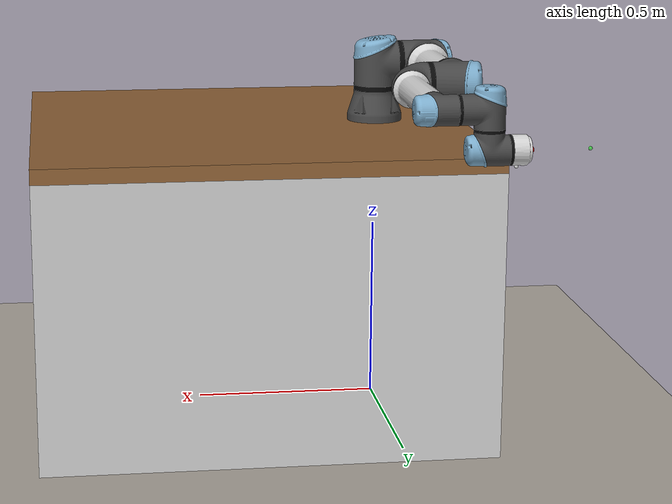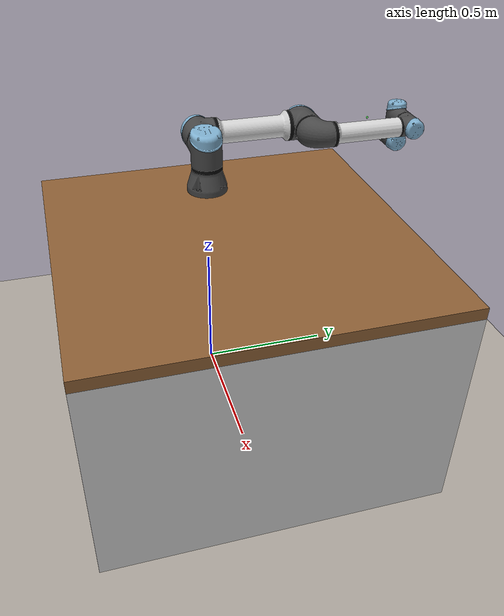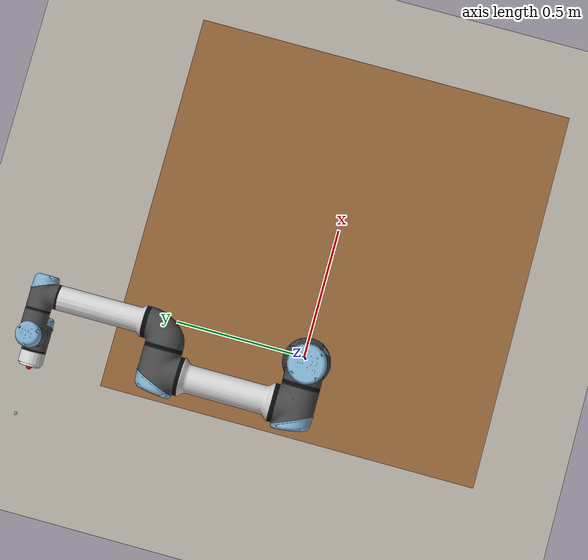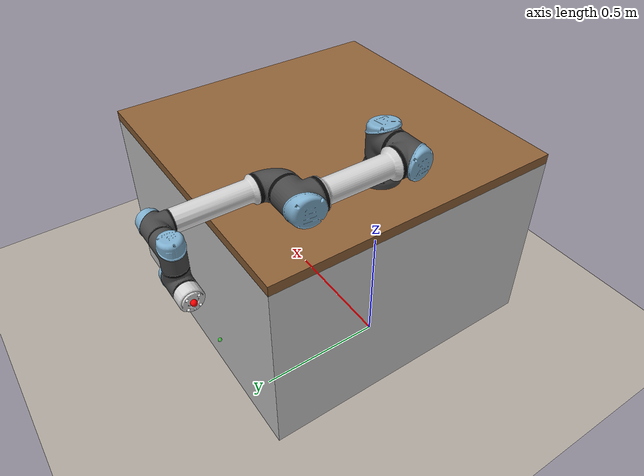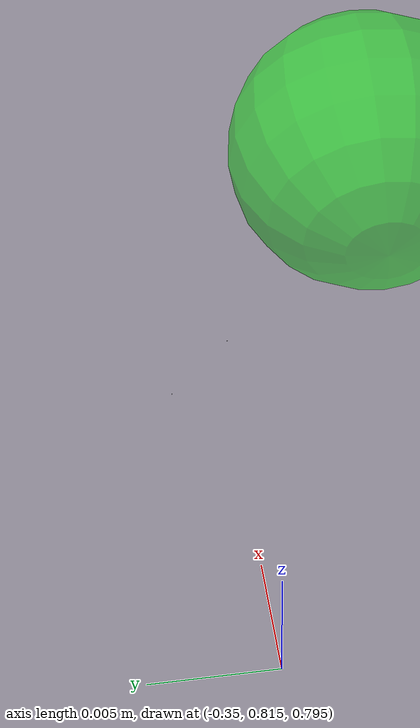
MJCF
<mujoco model="Scanned Objects">
    <!-- Memory? -->
    <size memory="500M"/>

    <!-- Default options -->
    <compiler angle="radian" autolimits="true" />
    <option integrator="RK4" noslip_iterations="20" />
    <default>
        <joint armature="0.1" damping="0.1" />
        <default class="visual_only">
            <geom type="mesh" contype="0" conaffinity="0" group="2" />
        </default>
        <default class="no_visual_collision">
            <!-- visual group of 'collision' should be 3 to not render -->
            <geom type="capsule" solimp=".9 .95 .01" solref=".02 1" group="3" />
        </default>
        <default class="visual_collision">
            <geom type="mesh" solimp=".9 .95 .01" solref=".02 1" group="2" />
        </default>
    </default>

    <!-- Sky and floor -->
    <include file="./tabletop/object/floor_new.xml" />

    <!-- Table -->
    <include file="./tabletop/object/object_table_3.xml" />

    <include file="./ur5e_rq2f85/ur5e_2f85.xml"/>

</mujoco>

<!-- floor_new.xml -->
<mujoco model="floor and sky">

    <visual>
        <headlight diffuse="0.6 0.6 0.6" ambient="0.3 0.3 0.3" specular="0 0 0" />
        <rgba haze="0.15 0.25 0.35 1" />
    </visual>

    <asset>
        <!-- Sky -->
        <texture type="skybox" builtin="gradient" rgb1="0.3 0.5 0.7" rgb2="0 0 0" width="512"
            height="3072" />
        <!-- Ground -->
        <texture type="2d" name="light_wood" file="light_floor.png" />
        <material name="floor_mat" texture="light_wood" specular="0.5" shininess="0.5"
            rgba="0.9 0.9 0.9 1" />
    </asset>

    <worldbody>
        <light pos="1 -1 1.5" dir="-1 1 -1" diffuse="0.5 0.5 0.5" directional="true" />
        <geom name="floor" group="1" size="0 0 0.05" type="plane" material="floor_mat" />
    </worldbody>

</mujoco>

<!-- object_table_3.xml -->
<mujocoinclude>

    <asset>
        <texture type="cube" name="stone" file="light-gray-plaster.png" />
        <material name="ceramic_table_mat" texture="stone" specular="0.5" shininess="0.5"
            />
        <texture type="2d" name="wooden" file="martin_novak_wood_table.png" />
        <material name="wood_table_mat" texture="wooden" specular="0.5" shininess="0.5" rgba="0.79 0.75 0.7 1"/>
    </asset>

    <worldbody>
        <body name="front_object_table" pos="0 0 0" euler="0 0 0">
            <geom name="front_object_table" size="0.6 0.6 0.38" pos="0.36 0.0 0.38" type="box"
                material="ceramic_table_mat"/>
            <geom name="front_object_top" size="0.6 0.6 0.02" pos="0.36 0.0 0.78" type="box"
                material="wood_table_mat"/>

            <inertial pos="0 0 0" mass="1" diaginertia="0 0 0" />

           <body name="camera" pos="1.523 0.000 1.436">
                <camera name="agentview" pos="0 0 0" xyaxes="0.000 1.000 -0.000 -0.597 0.000 0.802" fovy="60" />
            </body>

            <body name="camera2" pos="0.5 0.0 1.8">
                <camera name="topview" pos="0 0 0" xyaxes="0 -1 0 1 0 0" fovy="60" />
            </body>

            <body name="camera3" pos="0.05 0.0 1.0">
                <camera name="sideview" pos="0 0 0" xyaxes="0 -1.0 0 0.0 0.0 0.1" fovy="60" />
            </body>
        </body>

    </worldbody>
</mujocoinclude>

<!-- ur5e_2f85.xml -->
<mujoco model="ur5e">
  <compiler angle="radian" autolimits="true"/>

  <option integrator="implicitfast"/>

  <default>
    <default class="ur5e">
      <default class="visual">
        <geom type="mesh" contype="0" conaffinity="0" group="2"/>
      </default>
      <default class="collision">
        <geom type="capsule" group="3"/>
        <default class="eef_collision">
          <geom type="cylinder"/>
        </default>
      </default>
      <joint axis="0 1 0" range="-6.28319 6.28319"/>
      <default class="joint_limited">
        <joint range="-3.1415 3.1415"/>
      </default>
      <default class="position">
        <position ctrlrange="-6.2831 6.2831" kp="2000" kv="200" forcerange="-150 150"/>
        <default class="position_limited">
          <position ctrlrange="-3.1415 3.1415"/>
        </default>
        <default class="position_small">
          <position kp="500" kv="50" forcerange="-28 28"/>
        </default>
      </default>
    </default>
    <default class="2f85">
      <mesh scale="0.001 0.001 0.001"/>
      <general biastype="affine"/>
      <site type="sphere" rgba="0.9 0.9 0.9 1" size="0.005" group="4"/>
      <joint axis="1 0 0"/>
      <default class="driver">
        <joint range="0 0.8" armature="0.005" damping="0.1" solimplimit="0.95 0.99 0.001" solreflimit="0.005 1"/>
      </default>
      <default class="follower">
        <joint range="-0.872664 0.872664" pos="0 -0.018 0.0065" solimplimit="0.95 0.99 0.001" solreflimit="0.005 1"/>
      </default>
      <default class="spring_link">
        <joint range="-0.29670597283 0.8" stiffness="0.05" springref="2.62" damping="0.00125"/>
      </default>
      <default class="coupler">
        <joint range="-1.57 0" solimplimit="0.95 0.99 0.001" solreflimit="0.005 1"/>
      </default>
      <default class="2f85/visual">
        <geom type="mesh" contype="0" conaffinity="0" group="2"/>
      </default>
      <default class="2f85/collision">
        <geom type="mesh" group="3"/>
        <default class="pad_box1">
          <geom mass="0" type="box" pos="0 -0.0026 0.028125" size="0.011 0.004 0.009375" friction="0.7"
            solimp="0.95 0.99 0.001" solref="0.004 1" priority="1" rgba="0.55 0.55 0.55 1"/>
        </default>
        <default class="pad_box2">
          <geom mass="0" type="box" pos="0 -0.0026 0.009375" size="0.011 0.004 0.009375" friction="0.6"
            solimp="0.95 0.99 0.001" solref="0.004 1" priority="1" rgba="0.45 0.45 0.45 1"/>
        </default>
      </default>
    </default>
  </default>

  <asset>
    <material name="black" rgba="0.033 0.033 0.033 1"/>
    <material name="jointgray" rgba="0.278 0.278 0.278 1"/>
    <material name="linkgray" rgba="0.82 0.82 0.82 1"/>
    <material name="urblue" rgba="0.49 0.678 0.8 1"/>
    <material name="white" rgba="1 1 1 1"/>
    <material name="off_white" rgba="0.901961 0.921569 0.929412 1"/>
    <material name="dark_grey" rgba="0.25 0.25 0.25 1"/>
    <material name="green" rgba="0 1 0 1"/>
    <material name="light_blue" rgba="0.039216 0.541176 0.780392 1"/>
    <material name="metal" rgba="0.58 0.58 0.58 1"/>
    <material name="silicone" rgba="0.1882 0.1882 0.1882 1"/>
    <material name="gray" rgba="0.4627 0.4627 0.4627 1"/>
    <material name="2f85/black" rgba="0.149 0.149 0.149 1"/>

    <mesh file="universal_robots_ur5e/assets/base_0.obj"/>
    <mesh file="universal_robots_ur5e/assets/base_1.obj"/>
    <mesh file="universal_robots_ur5e/assets/shoulder_0.obj"/>
    <mesh file="universal_robots_ur5e/assets/shoulder_1.obj"/>
    <mesh file="universal_robots_ur5e/assets/shoulder_2.obj"/>
    <mesh file="universal_robots_ur5e/assets/upperarm_0.obj"/>
    <mesh file="universal_robots_ur5e/assets/upperarm_1.obj"/>
    <mesh file="universal_robots_ur5e/assets/upperarm_2.obj"/>
    <mesh file="universal_robots_ur5e/assets/upperarm_3.obj"/>
    <mesh file="universal_robots_ur5e/assets/forearm_0.obj"/>
    <mesh file="universal_robots_ur5e/assets/forearm_1.obj"/>
    <mesh file="universal_robots_ur5e/assets/forearm_2.obj"/>
    <mesh file="universal_robots_ur5e/assets/forearm_3.obj"/>
    <mesh file="universal_robots_ur5e/assets/wrist1_0.obj"/>
    <mesh file="universal_robots_ur5e/assets/wrist1_1.obj"/>
    <mesh file="universal_robots_ur5e/assets/wrist1_2.obj"/>
    <mesh file="universal_robots_ur5e/assets/wrist2_0.obj"/>
    <mesh file="universal_robots_ur5e/assets/wrist2_1.obj"/>
    <mesh file="universal_robots_ur5e/assets/wrist2_2.obj"/>
    <mesh file="universal_robots_ur5e/assets/wrist3.obj"/>

    <mesh class="2f85" file="robotiq_2f85/assets/base_mount.stl"/>
    <mesh class="2f85" file="robotiq_2f85/assets/base.stl"/>
    <mesh class="2f85" file="robotiq_2f85/assets/driver.stl"/>
    <mesh class="2f85" file="robotiq_2f85/assets/coupler.stl"/>
    <mesh class="2f85" file="robotiq_2f85/assets/follower.stl"/>
    <mesh class="2f85" file="robotiq_2f85/assets/pad.stl"/>
    <mesh class="2f85" file="robotiq_2f85/assets/silicone_pad.stl"/>
    <mesh class="2f85" file="robotiq_2f85/assets/spring_link.stl"/>
  </asset>

  <worldbody>
    <body name="ur5e/base" pos="0 0 0.8" quat="1 0 0 1" childclass="ur5e">
      <inertial mass="4" pos="0 0 0" diaginertia="0.00443333156 0.00443333156 0.0072"/>
      <geom mesh="base_0" material="black" class="visual"/>
      <geom mesh="base_1" material="jointgray" class="visual"/>
      <body name="shoulder_link" pos="0 0 0.163">
        <inertial mass="3.7" pos="0 0 0" diaginertia="0.0102675 0.0102675 0.00666"/>
        <joint name="joint1" axis="0 0 1"/>
        <site name="joint1"/>
        <geom mesh="shoulder_0" material="urblue" class="visual"/>
        <geom mesh="shoulder_1" material="black" class="visual"/>
        <geom mesh="shoulder_2" material="jointgray" class="visual"/>
        <geom class="collision" size="0.06 0.06" pos="0 0 -0.04"/>
        <body name="upper_arm_link" pos="0 0.138 0" quat="1 0 1 0">
          <inertial mass="8.393" pos="0 0 0.2125" diaginertia="0.133886 0.133886 0.0151074"/>
          <joint name="joint2"/>
          <site name="joint2"/>
          <geom mesh="upperarm_0" material="linkgray" class="visual"/>
          <geom mesh="upperarm_1" material="black" class="visual"/>
          <geom mesh="upperarm_2" material="jointgray" class="visual"/>
          <geom mesh="upperarm_3" material="urblue" class="visual"/>
          <geom class="collision" pos="0 -0.04 0" quat="1 1 0 0" size="0.06 0.06"/>
          <geom class="collision" size="0.05 0.2" pos="0 0 0.2"/>
          <body name="forearm_link" pos="0 -0.131 0.425">
            <inertial mass="2.275" pos="0 0 0.196" diaginertia="0.0311796 0.0311796 0.004095"/>
            <joint name="joint3" class="joint_limited"/>
            <site name="joint3"/>
            <geom mesh="forearm_0" material="urblue" class="visual"/>
            <geom mesh="forearm_1" material="linkgray" class="visual"/>
            <geom mesh="forearm_2" material="black" class="visual"/>
            <geom mesh="forearm_3" material="jointgray" class="visual"/>
            <geom class="collision" pos="0 0.08 0" quat="1 1 0 0" size="0.055 0.06"/>
            <geom class="collision" size="0.038 0.19" pos="0 0 0.2"/>
            <body name="wrist_1_link" pos="0 0 0.392" quat="1 0 1 0">
              <inertial mass="1.219" pos="0 0.127 0" diaginertia="0.0025599 0.0025599 0.0021942"/>
              <joint name="joint4"/>
              <site name="joint4"/>
              <geom mesh="wrist1_0" material="black" class="visual"/>
              <geom mesh="wrist1_1" material="urblue" class="visual"/>
              <geom mesh="wrist1_2" material="jointgray" class="visual"/>
              <geom class="collision" pos="0 0.05 0" quat="1 1 0 0" size="0.04 0.07"/>
              <body name="wrist_2_link" pos="0 0.127 0">
                <inertial mass="1.219" pos="0 0 0.1" diaginertia="0.0025599 0.0025599 0.0021942"/>
                <joint name="joint5" axis="0 0 1"/>
                <site name="joint5"/>
                <geom mesh="wrist2_0" material="black" class="visual"/>
                <geom mesh="wrist2_1" material="urblue" class="visual"/>
                <geom mesh="wrist2_2" material="jointgray" class="visual"/>
                <geom class="collision" size="0.04 0.06" pos="0 0 0.04"/>
                <geom class="collision" pos="0 0.02 0.1" quat="1 1 0 0" size="0.04 0.04"/>
                <body name="wrist_3_link" pos="0 0 0.1">
                  <inertial mass="0.1879" pos="0 0.0771683 0" quat="1 0 0 1"
                    diaginertia="0.000132134 9.90863e-05 9.90863e-05"/>
                  <joint name="joint6"/>
                  <site name="joint6"/>
                  <body name="camera_center" pos="0.0 -0.09 0.1">
                      <geom size="0.005 0.005 0.005" pos="0. 0. 0."
                          contype="0" conaffinity="0"
                          type="box" rgba="1.00 0.00 0.0 0" />
                      <camera name="egocentric" pos="0 0 0" xyaxes="-1 0 0 0 0 1" fovy="90" />
                  </body>
                  <geom material="linkgray" mesh="wrist3" class="visual"/>
                  <geom class="eef_collision" pos="0 0.08 0" quat="1 1 0 0" size="0.04 0.02"/>
                  <body name="attachment" pos="0 0.1 0" quat="0.707107 -0.707107 0 0">
                    <site name="attachment_site" rgba="1 0 0 1" size="0.01" group="1"/>
                    <body name="base_mount" pos="0 0 0" quat="1 0 0 1" childclass="2f85">
                      <geom class="2f85/visual" mesh="base_mount" material="2f85/black"/>
                      <geom class="2f85/collision" mesh="base_mount"/>
                      <body name="base" pos="0 0 0.0038" quat="1 0 0 -1">
                        <inertial mass="0.777441" pos="0 -2.70394e-05 0.0354675" quat="1 -0.00152849 0 0"
                          diaginertia="0.000260285 0.000225381 0.000152708"/>
                        <geom class="2f85/visual" mesh="base" material="2f85/black"/>
                        <geom class="2f85/collision" mesh="base"/>
                        <site name="pinch" pos="0 0 0.145"/>
                        <body name="tcp_link" pos="0 0 0.145">
                          <geom type="sphere" size="0.005" rgba="0 1 0 0.5" contype="0" conaffinity="0"/>
                        </body>
                        <body name="right_driver" pos="0 0.0306011 0.054904">
                          <inertial mass="0.00899563" pos="2.96931e-12 0.0177547 0.00107314"
                            quat="0.681301 0.732003 0 0" diaginertia="1.72352e-06 1.60906e-06 3.22006e-07"/>
                          <joint name="rh_r1" class="driver"/>
                          <geom class="2f85/visual" mesh="driver" material="gray"/>
                          <geom class="2f85/collision" mesh="driver"/>
                          <body name="right_coupler" pos="0 0.0315 -0.0041">
                            <inertial mass="0.0140974" pos="0 0.00301209 0.0232175"
                              quat="0.705636 -0.0455904 0.0455904 0.705636"
                              diaginertia="4.16206e-06 3.52216e-06 8.88131e-07"/>
                            <joint name="right_coupler_joint" class="coupler"/>
                            <geom class="2f85/visual" mesh="coupler" material="2f85/black"/>
                            <geom class="2f85/collision" mesh="coupler"/>
                          </body>
                        </body>
                        <body name="right_spring_link" pos="0 0.0132 0.0609">
                          <inertial mass="0.0221642" pos="-8.65005e-09 0.0181624 0.0212658"
                            quat="0.663403 -0.244737 0.244737 0.663403"
                            diaginertia="8.96853e-06 6.71733e-06 2.63931e-06"/>
                          <joint name="right_spring_link_joint" class="spring_link"/>
                          <geom class="2f85/visual" mesh="spring_link" material="2f85/black"/>
                          <geom class="2f85/collision" mesh="spring_link"/>
                          <body name="right_follower" pos="0 0.055 0.0375">
                            <inertial mass="0.0125222" pos="0 -0.011046 0.0124786" quat="1 0.1664 0 0"
                              diaginertia="2.67415e-06 2.4559e-06 6.02031e-07"/>
                            <joint name="rh_r2" class="follower"/>
                            <geom class="2f85/visual" mesh="follower" material="2f85/black"/>
                            <geom class="2f85/collision" mesh="follower"/>
                            <body name="right_pad" pos="0 -0.0189 0.01352">
                              <geom class="pad_box1" name="right_pad1"/>
                              <geom class="pad_box2" name="right_pad2"/>
                              <inertial mass="0.0035" pos="0 -0.0025 0.0185" quat="0.707107 0 0 0.707107"
                                diaginertia="4.73958e-07 3.64583e-07 1.23958e-07"/>
                              <geom class="2f85/visual" mesh="pad"/>
                              <body name="right_silicone_pad">
                                <geom class="2f85/visual" mesh="silicone_pad" material="2f85/black"/>
                              </body>
                            </body>
                          </body>
                        </body>
                        <body name="left_driver" pos="0 -0.0306011 0.054904" quat="0 0 0 1">
                          <inertial mass="0.00899563" pos="0 0.0177547 0.00107314" quat="0.681301 0.732003 0 0"
                            diaginertia="1.72352e-06 1.60906e-06 3.22006e-07"/>
                          <joint name="rh_l1" class="driver"/>
                          <geom class="2f85/visual" mesh="driver" material="gray"/>
                          <geom class="2f85/collision" mesh="driver"/>
                          <body name="left_coupler" pos="0 0.0315 -0.0041">
                            <inertial mass="0.0140974" pos="0 0.00301209 0.0232175"
                              quat="0.705636 -0.0455904 0.0455904 0.705636"
                              diaginertia="4.16206e-06 3.52216e-06 8.88131e-07"/>
                            <joint name="left_coupler_joint" class="coupler"/>
                            <geom class="2f85/visual" mesh="coupler" material="2f85/black"/>
                            <geom class="2f85/collision" mesh="coupler"/>
                          </body>
                        </body>
                        <body name="left_spring_link" pos="0 -0.0132 0.0609" quat="0 0 0 1">
                          <inertial mass="0.0221642" pos="-8.65005e-09 0.0181624 0.0212658"
                            quat="0.663403 -0.244737 0.244737 0.663403"
                            diaginertia="8.96853e-06 6.71733e-06 2.63931e-06"/>
                          <joint name="left_spring_link_joint" class="spring_link"/>
                          <geom class="2f85/visual" mesh="spring_link" material="2f85/black"/>
                          <geom class="2f85/collision" mesh="spring_link"/>
                          <body name="left_follower" pos="0 0.055 0.0375">
                            <inertial mass="0.0125222" pos="0 -0.011046 0.0124786" quat="1 0.1664 0 0"
                              diaginertia="2.67415e-06 2.4559e-06 6.02031e-07"/>
                            <joint name="rh_l2" class="follower"/>
                            <geom class="2f85/visual" mesh="follower" material="2f85/black"/>
                            <geom class="2f85/collision" mesh="follower"/>
                            <body name="left_pad" pos="0 -0.0189 0.01352">
                              <geom class="pad_box1" name="left_pad1"/>
                              <geom class="pad_box2" name="left_pad2"/>
                              <inertial mass="0.0035" pos="0 -0.0025 0.0185" quat="1 0 0 1"
                                diaginertia="4.73958e-07 3.64583e-07 1.23958e-07"/>
                              <geom class="2f85/visual" mesh="pad"/>
                              <body name="left_silicone_pad">
                                <geom class="2f85/visual" mesh="silicone_pad" material="2f85/black"/>
                              </body>
                            </body>
                          </body>
                        </body>
                      </body>
                    </body>
                  </body>
                </body>
              </body>
            </body>
          </body>
        </body>
      </body>
    </body>
  </worldbody>

  <contact>
    <exclude body1="base" body2="left_driver"/>
    <exclude body1="base" body2="right_driver"/>
    <exclude body1="base" body2="left_spring_link"/>
    <exclude body1="base" body2="right_spring_link"/>
    <exclude body1="right_coupler" body2="right_follower"/>
    <exclude body1="left_coupler" body2="left_follower"/>
  </contact>

  <equality>
    <connect anchor="0 0 0" body1="right_follower" body2="right_coupler" solimp="0.95 0.99 0.001" solref="0.005 1"/>
    <connect anchor="0 0 0" body1="left_follower" body2="left_coupler" solimp="0.95 0.99 0.001" solref="0.005 1"/>
  </equality>

  <actuator>
    <position class="position" name="actuator_joint1" joint="joint1"/>
    <position class="position" name="actuator_joint2" joint="joint2"/>
    <position class="position_limited" name="actuator_joint3" joint="joint3"/>
    <position class="position_small" name="actuator_joint4" joint="joint4"/>
    <position class="position_small" name="actuator_joint5" joint="joint5"/>
    <position class="position_small" name="actuator_joint6" joint="joint6"/>
    <position class="2f85" name="actuator_rh_r1" joint="rh_r1" forcerange="-5 5" ctrlrange="0 0.8" kp="80"/>
    <position class="2f85" name="actuator_rh_l1" joint="rh_l1" forcerange="-5 5" ctrlrange="0 0.8" kp="80"/>
  </actuator>
</mujoco>
